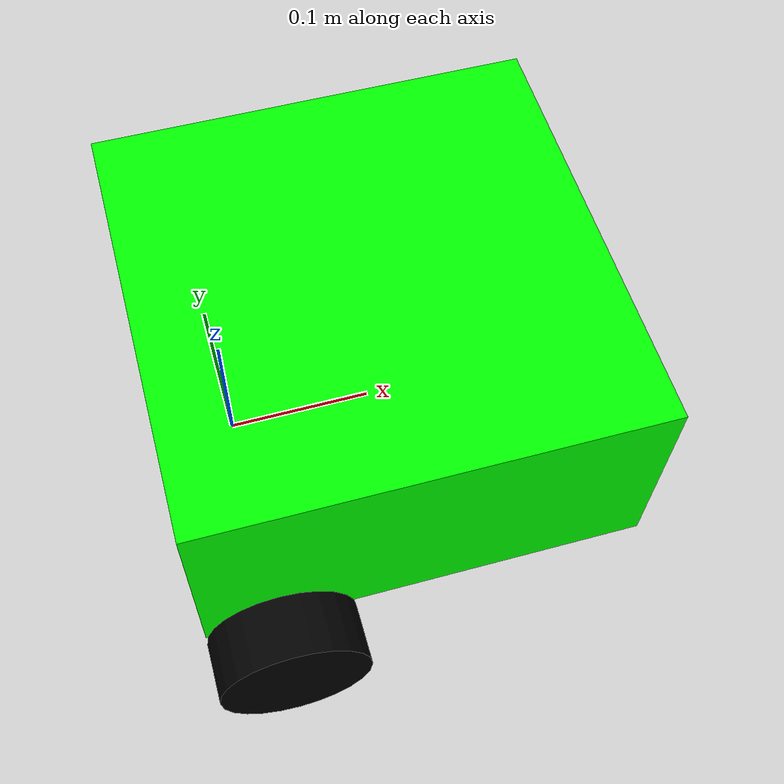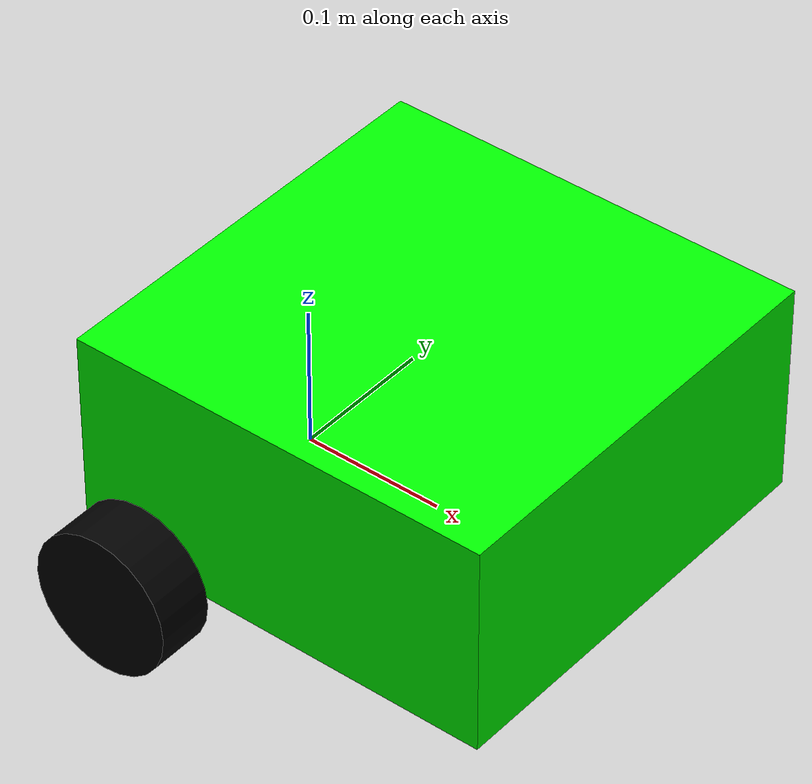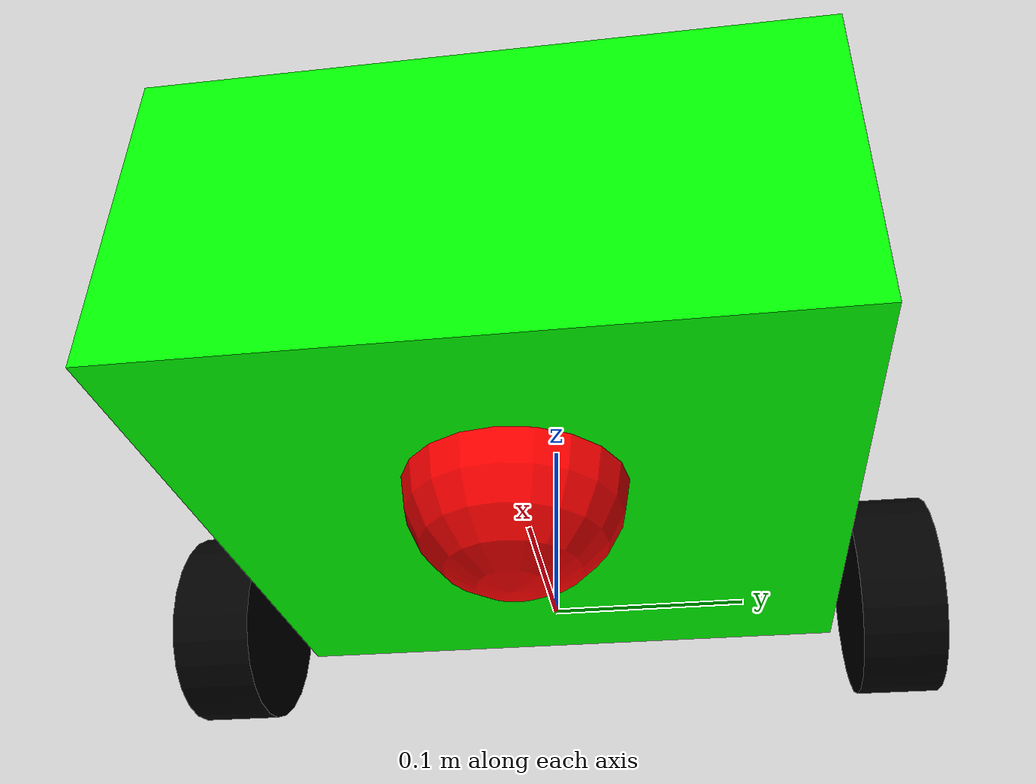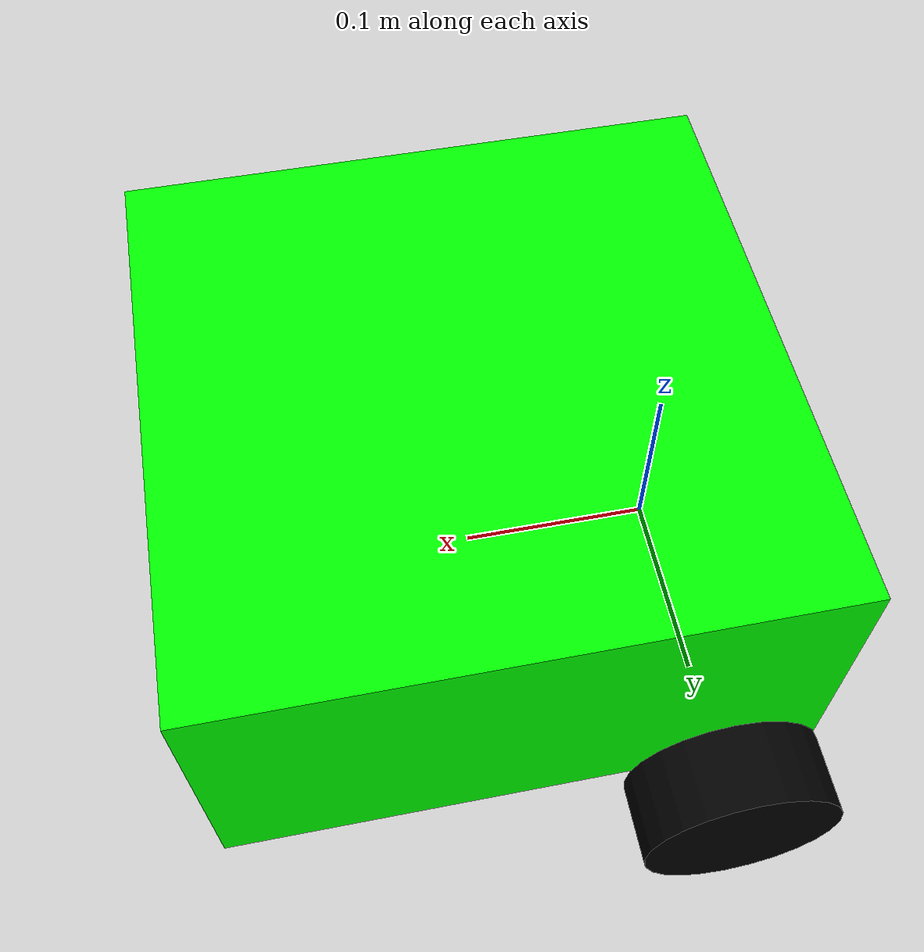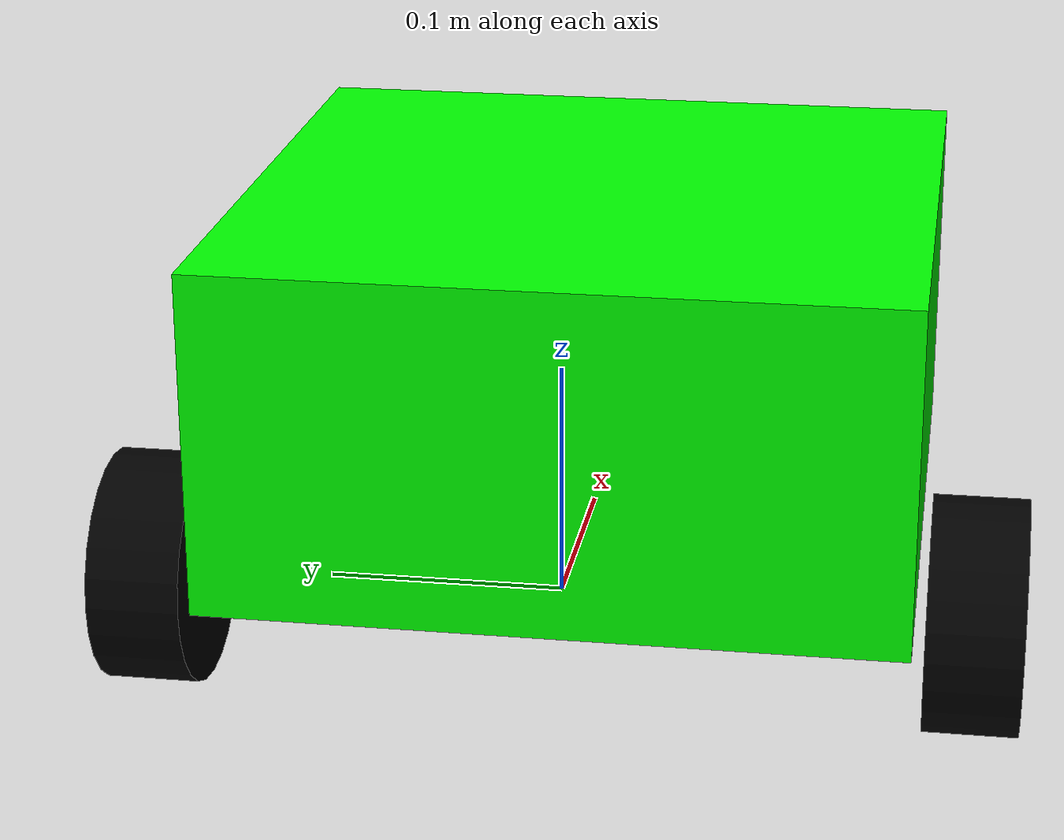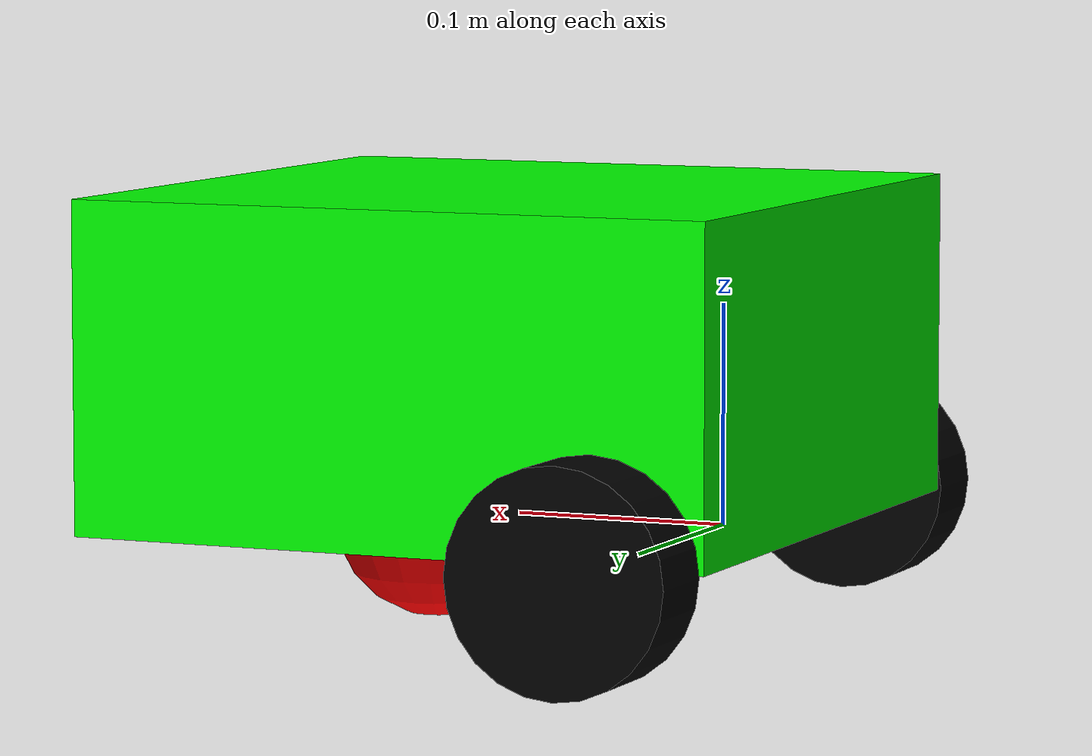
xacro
<?xml version="1.0"?>
<robot xmlns:xacro="http://www.ros.org/wiki/xacro">

    <xacro:include filename="inertial_macros.xacro" />

    <material name="black">
        <color rgba="0 0 0 1"/>
    </material>

    <material name="white">
        <color rgba="1 1 1 1"/>
    </material>

    <material name="grey">
        <color rgba="0.5 0.5 0.5 1"/>
    </material>

    <material name="red">
        <color rgba="1 0 0 1"/>
    </material>

    <material name="green">
        <color rgba="0 1 0 1"/>
    </material>

    <material name="blue">
        <color rgba="0 0 1 1"/>
    </material>

    <!-- BASE LINK -->

    <link name="base_link">

    </link>

    <!-- CHASSIS -->

    <joint name="Chassis_joint" type="fixed">
        <parent link="base_link"/>
        <child link="chassis"/>
        <origin xyz="-0.1 0 0"/>
    </joint>

    <link name="chassis">
        <visual>
            <origin xyz = "0.2 0 0.075"/>
            <geometry>
                <box size="0.3 0.3 0.15"/>
            </geometry>
            <material name="green"/>
        </visual>
        <collision>
            <origin xyz = "0.2 0 0.075"/>
            <geometry>
                <box size="0.3 0.3 0.15"/>
            </geometry>
        </collision>
    </link>

    <!-- LEFT WHEEL -->

    <joint name="left_wheel_joint" type="continuous">
        <parent link="base_link"/>
        <child link="left_wheel"/>
        <origin xyz="0 0.175 0" rpy= "-${pi/2} 0 0"/>
        <axis xyz="0 0 1"/>
    </joint>

    <link name="left_wheel">
        <visual>
            <geometry>
                <cylinder radius="0.05" length="0.04"/>
            </geometry>
            <material name="black"/>
        </visual>
        <collision>
            <geometry>
                <cylinder radius="0.05" length="0.04"/>
            </geometry>
        </collision>
    </link>

    <!-- RIGHT WHEEL -->

    <joint name="right_wheel_joint" type="continuous">
        <parent link="base_link"/>
        <child link="right_wheel"/>
        <origin xyz="0 -0.175 0" rpy= "${pi/2} 0 0"/>
        <axis xyz="0 0 -1"/>
    </joint>

    <link name="right_wheel">
        <visual>
            <geometry>
                <cylinder radius="0.05" length="0.04"/>
            </geometry>
            <material name="black"/>
        </visual>
        <collision>
            <geometry>
                <cylinder radius="0.05" length="0.04"/>
            </geometry>
        </collision>
    </link>

    <!--CASTER WHEEL-->

    <joint name="caster_wheel_joint" type="fixed">
        <parent link="chassis"/>
        <child link="caster_wheel"/>
        <origin xyz="0.24 0 0" rpy= "0 0 0"/>
    </joint>

    <link name="caster_wheel">
        <visual>
            <geometry>
                <sphere radius="0.05"/>
            </geometry>
            <material name="red"/>
        </visual>
        <collision>
            <geometry>
                <sphere radius="0.05"/>
            </geometry>
        </collision>
    </link>

</robot>
